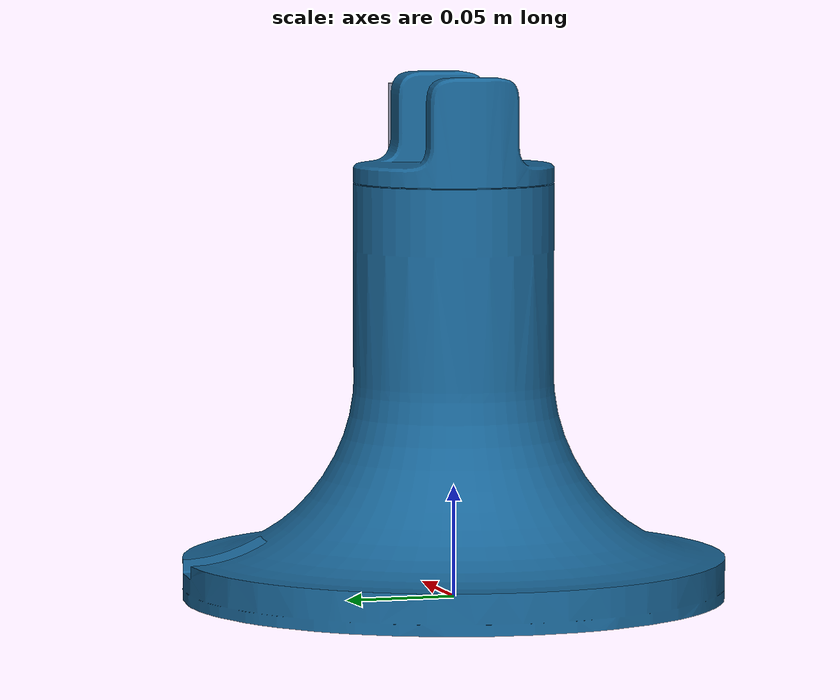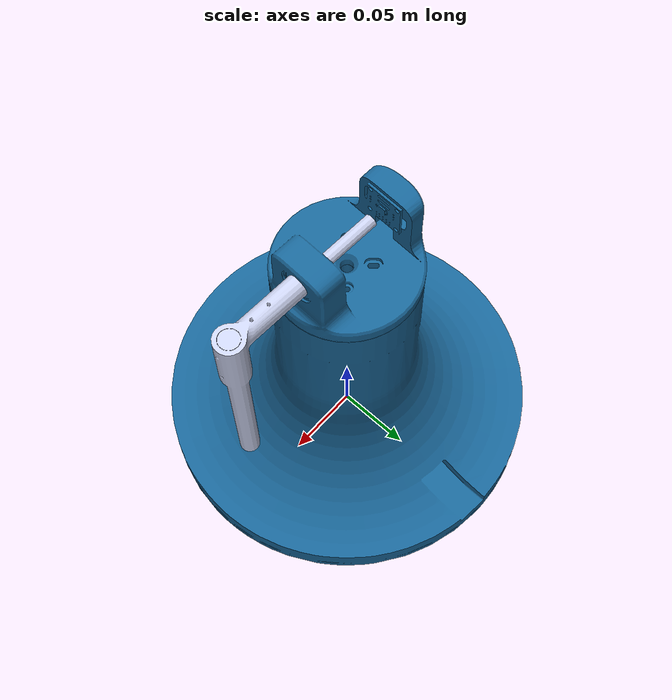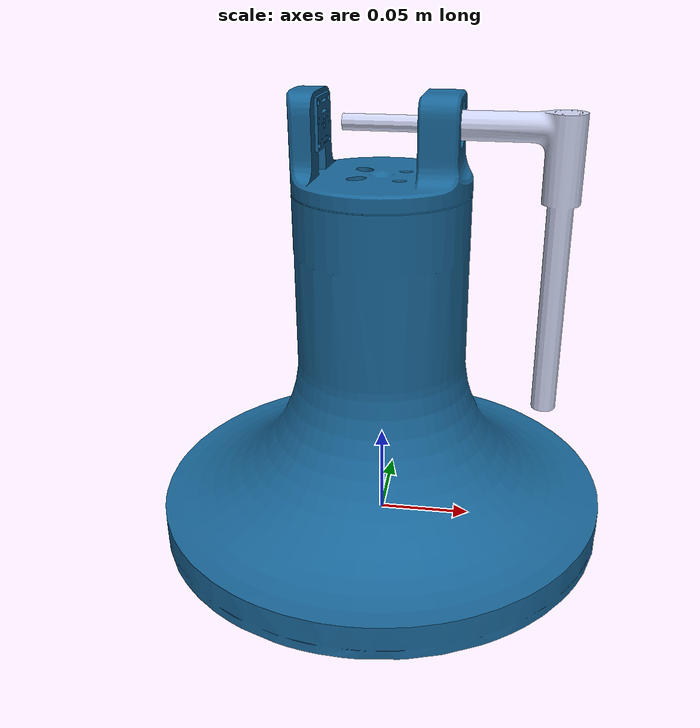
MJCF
<mujoco model="furuta_pendulum">
  <compiler angle="radian" meshdir="../meshes/"/>

  <option timestep="0.001" iterations="50" solver="Newton" tolerance="1e-10" integrator="implicit"/>

  <asset>
    <texture type="skybox" builtin="gradient" rgb1="0.1 0.1 0.1" rgb2="0.02 0.02 0.02" width="512" height="512"/>
    <texture name="texplane" builtin="checker" rgb1=".2 .3 .4" rgb2=".1 0.15 0.2" type="2d" width="512" height="512" mark="edge" markrgb=".8 .8 .8"/>
    <material name="matplane" reflectance="0" texture="texplane" texrepeat="1 1" texuniform="true"/>

    <mesh name="base_link" content_type="model/stl" file="base_link.STL"/>
    <mesh name="rotor_link" content_type="model/stl" file="rotor_link.STL"/>
    <mesh name="rotating_base_link" content_type="model/stl" file="rotating_base_link.STL"/>
    <mesh name="pendulum_link" content_type="model/stl" file="pendulum_link.STL"/>
  </asset>

  <worldbody>
    <light directional="true" diffuse=".6 .6 .6" specular="0.2 0.2 0.2" pos="3 0 2" dir="-3 0 -2" castshadow="false"/>

    <geom type="mesh" contype="0" conaffinity="0" group="1" density="2700" rgba="0.094118 0.396078 0.592157 1" mesh="base_link"/>
    <geom type="mesh" contype="0" conaffinity="0" rgba="0.094118 0.396078 0.592157 0.8" mesh="base_link"/>

    <body name="rotor_link" pos="0 0 0.16509" quat="-2.6569e-06 -0.723319 -0.690514 -2.5364e-06">

      <joint name="rotor_joint" pos="0 0 0" axis="0 0 1" damping="0.0025" armature="0.0005" frictionloss="0.0025"/>

      <geom type="mesh" contype="0" conaffinity="0" group="1" mass="0.005" rgba="0.094118 0.396078 0.592157 1" mesh="rotor_link"/>
      <geom type="mesh" contype="0" conaffinity="0" rgba="0.094118 0.396078 0.592157 1" mesh="rotor_link"/>

      <geom pos="0.00052307 0 -0.020976" quat="1.34925e-11 3.67321e-06 1 3.67321e-06" type="mesh" contype="0" conaffinity="0" group="1" mass="0.075" rgba="0.094118 0.396078 0.592157 1" mesh="rotating_base_link"/>
      <geom pos="0.00052307 0 -0.020976" quat="1.34925e-11 3.67321e-06 1 3.67321e-06" type="mesh" contype="0" conaffinity="0" rgba="0.094118 0.396078 0.592157 1" mesh="rotating_base_link"/>

      <body name="pendulum_link" pos="5.95127e-07 0.0810093 -0.0546994" quat="3.67321e-06 -1 0 -2.69849e-11">
        <inertial mass="0.2" pos="0 0 -0.115" diaginertia="0.00004 0.00004 0.00001"/>

        <joint name="pendulum_joint" pos="0 0 0" axis="0 1 0" damping="0.0005" frictionloss="0.0008"  armature="0.00001" stiffness="0" ref="3.14159265"/>

        <geom type="mesh" contype="0" conaffinity="0" group="1" rgba="0.792157 0.819608 0.933333 1" mesh="pendulum_link"/>
        <geom type="mesh" contype="0" conaffinity="0" rgba="0.792157 0.819608 0.933333 1" mesh="pendulum_link"/>
      </body>
    </body>
  </worldbody>

  <actuator>
    <motor name="arm_motor" joint="rotor_joint" gear="0.306" ctrlrange="-1.5 1.5" ctrllimited="true"/>
  </actuator>

  <sensor>
    <jointpos name="rotor_angle" joint="rotor_joint"/>
    <jointvel name="rotor_vel" joint="rotor_joint"/>

    <jointpos name="pendulum_angle" joint="pendulum_joint"/>
    <jointvel name="pendulum_vel" joint="pendulum_joint"/>
  </sensor>

</mujoco>
